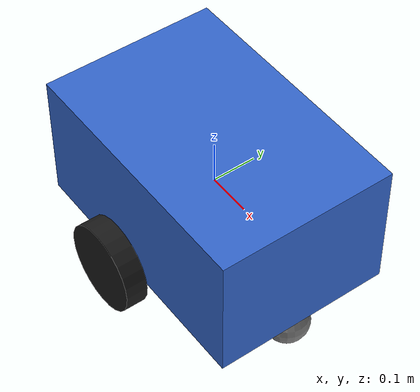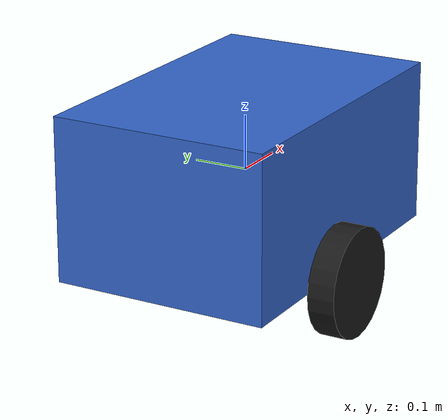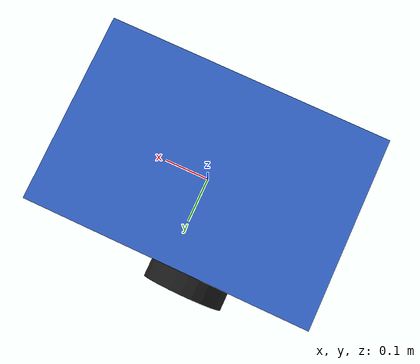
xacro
<?xml version="1.0"?>
<robot name="service_robot" xmlns:xacro="http://www.ros.org/wiki/xacro">

  <!-- ========== PROPERTIES (keep in sync with SDF) ========== -->
  <xacro:property name="chassis_length" value="0.6"/>
  <xacro:property name="chassis_width"  value="0.4"/>
  <xacro:property name="chassis_height" value="0.3"/>

  <xacro:property name="wheel_radius"    value="0.1"/>
  <xacro:property name="wheel_length"    value="0.05"/>
  <xacro:property name="wheel_x_offset"  value="-0.05"/>
  <xacro:property name="wheel_y_offset"  value="0.23"/>
  <xacro:property name="wheel_z_offset"  value="-0.15"/>

  <xacro:property name="caster_radius"   value="0.05"/>
  <xacro:property name="caster_xyz"      value="0.25 0 -0.20"/>

  <xacro:property name="lidar_xyz"       value="0 0 0.2"/>
  <xacro:property name="camera_xyz"      value="0.3 0 0.05"/>
  <xacro:property name="imu_xyz"         value="0 0 0"/>

  <!-- ========== BASE LINK (chassis) ========== -->
  <link name="base_link">
    <visual>
      <origin xyz="0 0 0" rpy="0 0 0"/>
      <geometry>
        <box size="${chassis_length} ${chassis_width} ${chassis_height}"/>
      </geometry>
      <material name="chassis_blue">
        <color rgba="0.2 0.4 0.8 1.0"/>
      </material>
    </visual>
  </link>

  <!-- ========== LEFT WHEEL ========== -->
  <link name="left_wheel_link">
    <visual>
      <origin xyz="0 0 0" rpy="0 0 0"/>
      <geometry>
        <cylinder radius="${wheel_radius}" length="${wheel_length}"/>
      </geometry>
      <material name="wheel_black">
        <color rgba="0.1 0.1 0.1 1.0"/>
      </material>
    </visual>
  </link>

  <joint name="left_wheel_joint" type="continuous">
    <parent link="base_link"/>
    <child  link="left_wheel_link"/>
    <origin xyz="${wheel_x_offset} ${wheel_y_offset} ${wheel_z_offset}"
            rpy="-1.5707963 0 0"/>
    <axis xyz="0 0 1"/>
  </joint>

  <!-- ========== RIGHT WHEEL ========== -->
  <link name="right_wheel_link">
    <visual>
      <origin xyz="0 0 0" rpy="0 0 0"/>
      <geometry>
        <cylinder radius="${wheel_radius}" length="${wheel_length}"/>
      </geometry>
      <material name="wheel_black"/>
    </visual>
  </link>

  <joint name="right_wheel_joint" type="continuous">
    <parent link="base_link"/>
    <child  link="right_wheel_link"/>
    <origin xyz="${wheel_x_offset} ${-wheel_y_offset} ${wheel_z_offset}"
            rpy="-1.5707963 0 0"/>
    <axis xyz="0 0 1"/>
  </joint>

  <!-- ========== CASTER (fixed joint: URDF has no ball joint) ========== -->
  <link name="caster_link">
    <visual>
      <origin xyz="0 0 0" rpy="0 0 0"/>
      <geometry>
        <sphere radius="${caster_radius}"/>
      </geometry>
      <material name="caster_grey">
        <color rgba="0.5 0.5 0.5 1.0"/>
      </material>
    </visual>
  </link>

  <joint name="caster_joint" type="fixed">
    <parent link="base_link"/>
    <child  link="caster_link"/>
    <origin xyz="${caster_xyz}" rpy="0 0 0"/>
  </joint>

  <!-- ========== LIDAR (fixed) ========== -->
  <link name="lidar_link"/>
  <joint name="lidar_joint" type="fixed">
    <parent link="base_link"/>
    <child  link="lidar_link"/>
    <origin xyz="${lidar_xyz}" rpy="0 0 0"/>
  </joint>

  <!-- ========== CAMERA (fixed) ========== -->
  <link name="camera_link"/>
  <joint name="camera_joint" type="fixed">
    <parent link="base_link"/>
    <child  link="camera_link"/>
    <origin xyz="${camera_xyz}" rpy="0 0 0"/>
  </joint>

  <!-- ========== IMU (fixed) ========== -->
  <link name="imu_link"/>
  <joint name="imu_joint" type="fixed">
    <parent link="base_link"/>
    <child  link="imu_link"/>
    <origin xyz="${imu_xyz}" rpy="0 0 0"/>
  </joint>

</robot>
